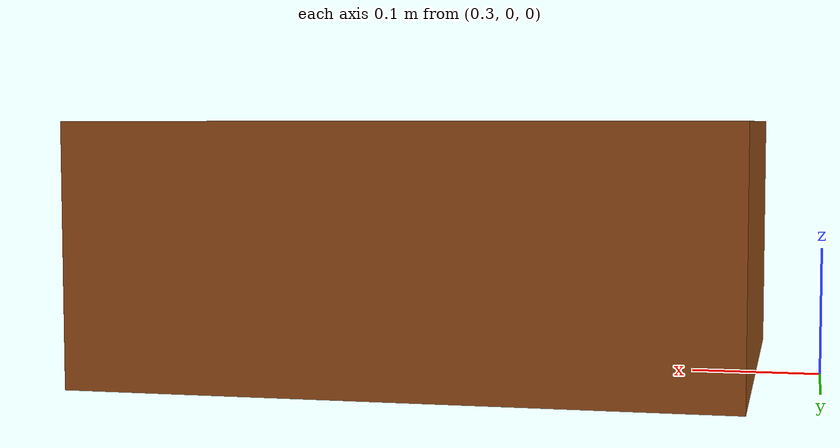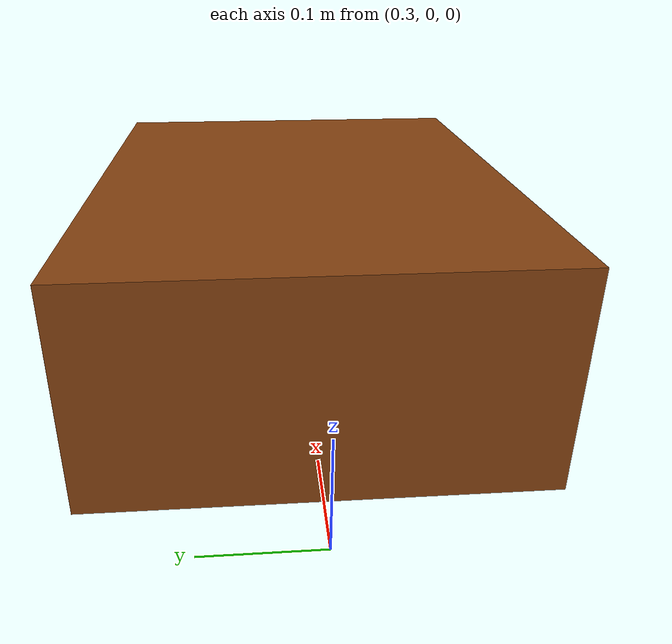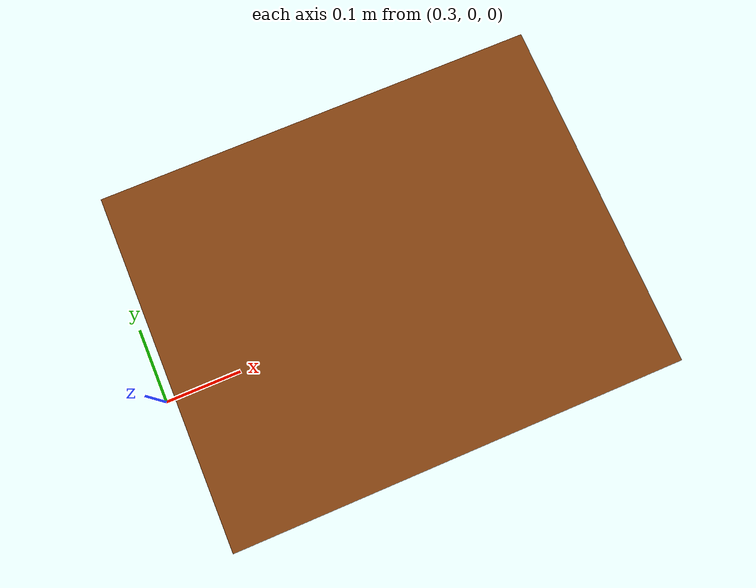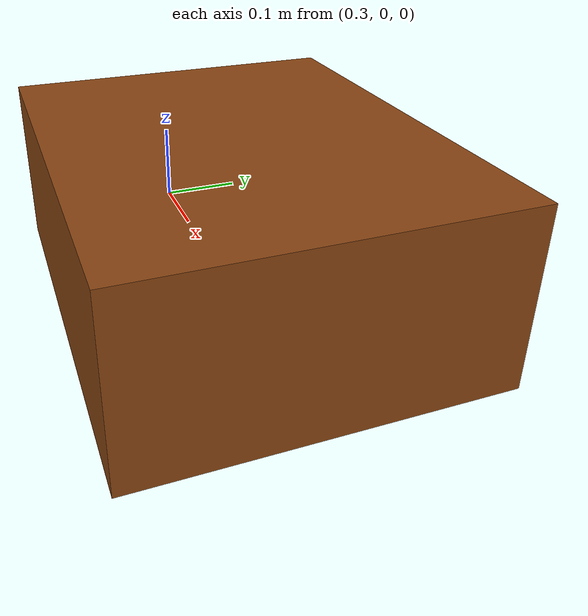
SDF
<?xml version="1.0" ?>
<sdf version="1.6">
  <model name="test_box">
    <pose>0.6 0 0.1 0 0 0</pose>
    <link name="link">
      <collision name="collision">
        <geometry>
          <box>
            <size>0.5 0.4 0.2</size>
          </box>

        </geometry>
      </collision>
      <visual name="visual">
        <geometry>
          <box>
            <size>0.5 0.4 0.2</size>
          </box>

        </geometry>
        <material>
          <diffuse>0.54 0.27 0.07 1</diffuse>
          <ambient>0.54 0.27 0.07 1</ambient>
          <specular>0.1 0.05 0.02 1</specular>
          <emissive>0 0 0 1</emissive>
        </material>
      </visual>
    </link>
  </model>
</sdf>
